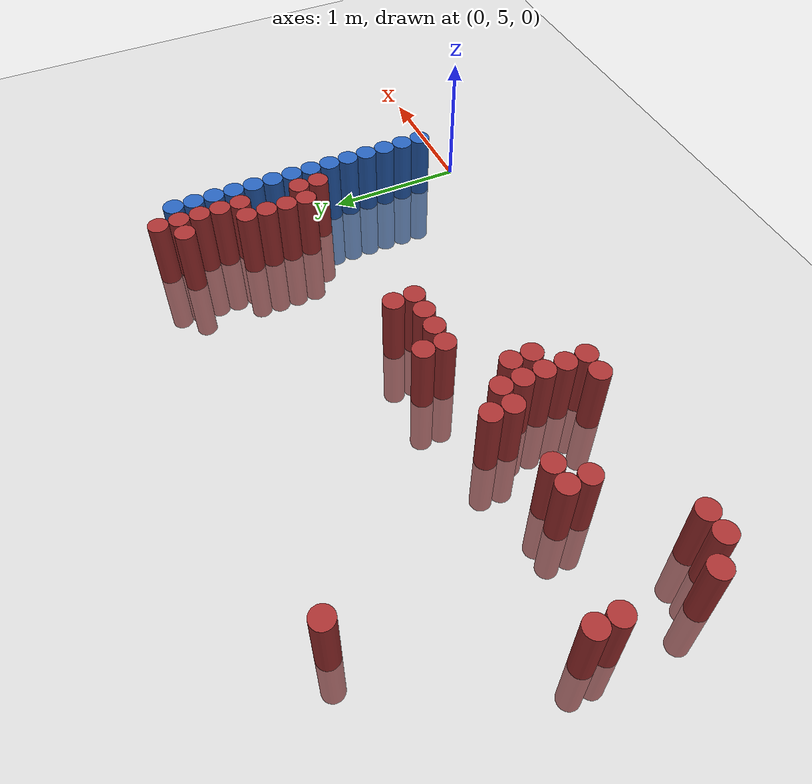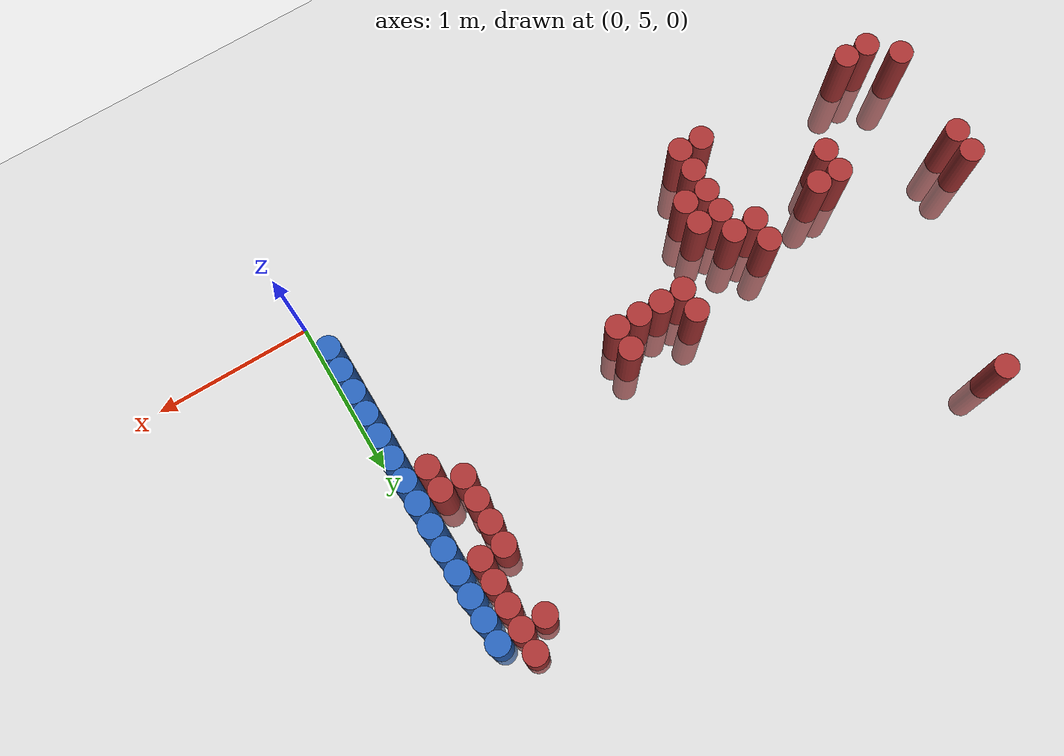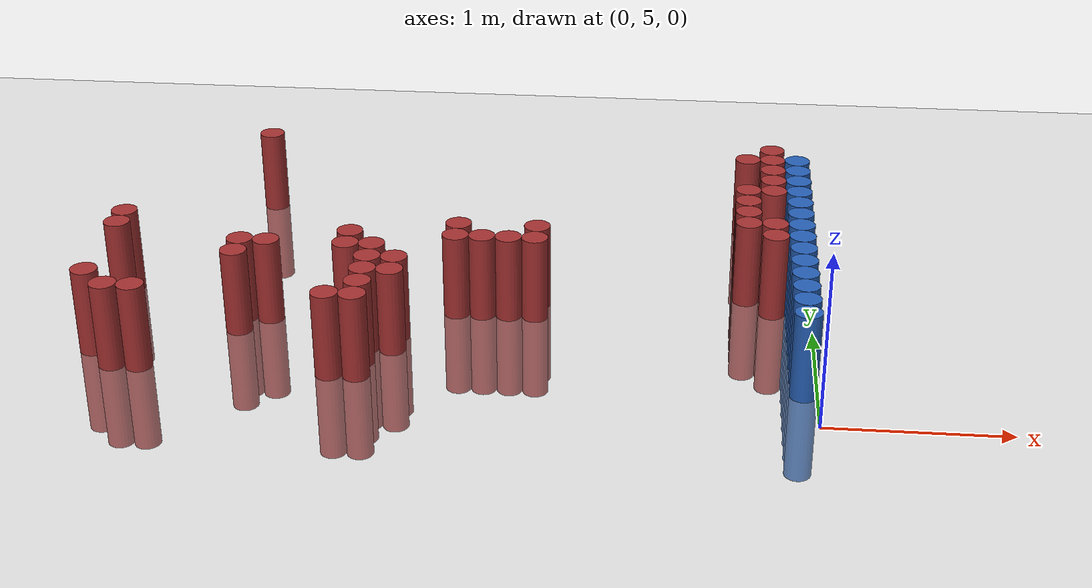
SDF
<sdf version="1.6">
 <world name="default">
  <model name="ground_plane">
   <static>1</static>
   <link name="link">
    <collision name="collision">
     <geometry><plane><normal>0 0 1</normal><size>100 100</size></plane></geometry>
     <surface><friction><ode><mu>100</mu><mu2>50</mu2></ode></friction></surface>
    </collision>
    <visual name="visual">
     <cast_shadows>0</cast_shadows>
     <geometry><plane><normal>0 0 1</normal><size>100 100</size></plane></geometry>
     <material>
      <script><uri>file://media/materials/scripts/gazebo.material</uri><name>Gazebo/Grey</name></script>
     </material>
    </visual>
   </link>
  </model>
  <model name="unit_cylinder_151">
   <static>1</static>
   <pose>-3.975000 5.475000 0.000000 0.000000 0.000000 0.000000</pose>
   <link name="link">
    <inertial>
     <mass>1</mass>
     <inertia><ixx>0.145833</ixx><ixy>0</ixy><ixz>0</ixz><iyy>0.145833</iyy><iyz>0</iyz><izz>0.125</izz></inertia>
    </inertial>
    <collision name="collision">
     <geometry><cylinder><radius>0.075000</radius><length>1</length></cylinder></geometry>
    </collision>
    <visual name="visual">
     <geometry><cylinder><radius>0.075000</radius><length>1</length></cylinder></geometry>
     <material>
      <ambient>0.648000 0.192000 0.192000 1</ambient>
      <diffuse>0.648000 0.192000 0.192000 1</diffuse>
     </material>
     <material>
      <script><name>Gazebo/Grey</name><uri>file://media/materials/scripts/gazebo.material</uri></script>
     </material>
    </visual>
   </link>
  </model>
  <model name="unit_cylinder_152">
   <static>1</static>
   <pose>-3.975000 6.075000 0.000000 0.000000 0.000000 0.000000</pose>
   <link name="link">
    <inertial>
     <mass>1</mass>
     <inertia><ixx>0.145833</ixx><ixy>0</ixy><ixz>0</ixz><iyy>0.145833</iyy><iyz>0</iyz><izz>0.125</izz></inertia>
    </inertial>
    <collision name="collision">
     <geometry><cylinder><radius>0.075000</radius><length>1</length></cylinder></geometry>
    </collision>
    <visual name="visual">
     <geometry><cylinder><radius>0.075000</radius><length>1</length></cylinder></geometry>
     <material>
      <ambient>0.648000 0.192000 0.192000 1</ambient>
      <diffuse>0.648000 0.192000 0.192000 1</diffuse>
     </material>
     <material>
      <script><name>Gazebo/Grey</name><uri>file://media/materials/scripts/gazebo.material</uri></script>
     </material>
    </visual>
   </link>
  </model>
  <model name="unit_cylinder_153">
   <static>1</static>
   <pose>-3.975000 6.225000 0.000000 0.000000 0.000000 0.000000</pose>
   <link name="link">
    <inertial>
     <mass>1</mass>
     <inertia><ixx>0.145833</ixx><ixy>0</ixy><ixz>0</ixz><iyy>0.145833</iyy><iyz>0</iyz><izz>0.125</izz></inertia>
    </inertial>
    <collision name="collision">
     <geometry><cylinder><radius>0.075000</radius><length>1</length></cylinder></geometry>
    </collision>
    <visual name="visual">
     <geometry><cylinder><radius>0.075000</radius><length>1</length></cylinder></geometry>
     <material>
      <ambient>0.648000 0.192000 0.192000 1</ambient>
      <diffuse>0.648000 0.192000 0.192000 1</diffuse>
     </material>
     <material>
      <script><name>Gazebo/Grey</name><uri>file://media/materials/scripts/gazebo.material</uri></script>
     </material>
    </visual>
   </link>
  </model>
  <model name="unit_cylinder_156">
   <static>1</static>
   <pose>-3.825000 5.325000 0.000000 0.000000 0.000000 0.000000</pose>
   <link name="link">
    <inertial>
     <mass>1</mass>
     <inertia><ixx>0.145833</ixx><ixy>0</ixy><ixz>0</ixz><iyy>0.145833</iyy><iyz>0</iyz><izz>0.125</izz></inertia>
    </inertial>
    <collision name="collision">
     <geometry><cylinder><radius>0.075000</radius><length>1</length></cylinder></geometry>
    </collision>
    <visual name="visual">
     <geometry><cylinder><radius>0.075000</radius><length>1</length></cylinder></geometry>
     <material>
      <ambient>0.648000 0.192000 0.192000 1</ambient>
      <diffuse>0.648000 0.192000 0.192000 1</diffuse>
     </material>
     <material>
      <script><name>Gazebo/Grey</name><uri>file://media/materials/scripts/gazebo.material</uri></script>
     </material>
    </visual>
   </link>
  </model>
  <model name="unit_cylinder_158">
   <static>1</static>
   <pose>-3.675000 5.325000 0.000000 0.000000 0.000000 0.000000</pose>
   <link name="link">
    <inertial>
     <mass>1</mass>
     <inertia><ixx>0.145833</ixx><ixy>0</ixy><ixz>0</ixz><iyy>0.145833</iyy><iyz>0</iyz><izz>0.125</izz></inertia>
    </inertial>
    <collision name="collision">
     <geometry><cylinder><radius>0.075000</radius><length>1</length></cylinder></geometry>
    </collision>
    <visual name="visual">
     <geometry><cylinder><radius>0.075000</radius><length>1</length></cylinder></geometry>
     <material>
      <ambient>0.648000 0.192000 0.192000 1</ambient>
      <diffuse>0.648000 0.192000 0.192000 1</diffuse>
     </material>
     <material>
      <script><name>Gazebo/Grey</name><uri>file://media/materials/scripts/gazebo.material</uri></script>
     </material>
    </visual>
   </link>
  </model>
  <model name="unit_cylinder_159">
   <static>1</static>
   <pose>-3.375000 7.425000 0.000000 0.000000 0.000000 0.000000</pose>
   <link name="link">
    <inertial>
     <mass>1</mass>
     <inertia><ixx>0.145833</ixx><ixy>0</ixy><ixz>0</ixz><iyy>0.145833</iyy><iyz>0</iyz><izz>0.125</izz></inertia>
    </inertial>
    <collision name="collision">
     <geometry><cylinder><radius>0.075000</radius><length>1</length></cylinder></geometry>
    </collision>
    <visual name="visual">
     <geometry><cylinder><radius>0.075000</radius><length>1</length></cylinder></geometry>
     <material>
      <ambient>0.648000 0.192000 0.192000 1</ambient>
      <diffuse>0.648000 0.192000 0.192000 1</diffuse>
     </material>
     <material>
      <script><name>Gazebo/Grey</name><uri>file://media/materials/scripts/gazebo.material</uri></script>
     </material>
    </visual>
   </link>
  </model>
  <model name="unit_cylinder_160">
   <static>1</static>
   <pose>-3.225000 5.775000 0.000000 0.000000 0.000000 0.000000</pose>
   <link name="link">
    <inertial>
     <mass>1</mass>
     <inertia><ixx>0.145833</ixx><ixy>0</ixy><ixz>0</ixz><iyy>0.145833</iyy><iyz>0</iyz><izz>0.125</izz></inertia>
    </inertial>
    <collision name="collision">
     <geometry><cylinder><radius>0.075000</radius><length>1</length></cylinder></geometry>
    </collision>
    <visual name="visual">
     <geometry><cylinder><radius>0.075000</radius><length>1</length></cylinder></geometry>
     <material>
      <ambient>0.648000 0.192000 0.192000 1</ambient>
      <diffuse>0.648000 0.192000 0.192000 1</diffuse>
     </material>
     <material>
      <script><name>Gazebo/Grey</name><uri>file://media/materials/scripts/gazebo.material</uri></script>
     </material>
    </visual>
   </link>
  </model>
  <model name="unit_cylinder_161">
   <static>1</static>
   <pose>-3.225000 5.925000 0.000000 0.000000 0.000000 0.000000</pose>
   <link name="link">
    <inertial>
     <mass>1</mass>
     <inertia><ixx>0.145833</ixx><ixy>0</ixy><ixz>0</ixz><iyy>0.145833</iyy><iyz>0</iyz><izz>0.125</izz></inertia>
    </inertial>
    <collision name="collision">
     <geometry><cylinder><radius>0.075000</radius><length>1</length></cylinder></geometry>
    </collision>
    <visual name="visual">
     <geometry><cylinder><radius>0.075000</radius><length>1</length></cylinder></geometry>
     <material>
      <ambient>0.648000 0.192000 0.192000 1</ambient>
      <diffuse>0.648000 0.192000 0.192000 1</diffuse>
     </material>
     <material>
      <script><name>Gazebo/Grey</name><uri>file://media/materials/scripts/gazebo.material</uri></script>
     </material>
    </visual>
   </link>
  </model>
  <model name="unit_cylinder_162">
   <static>1</static>
   <pose>-3.075000 5.925000 0.000000 0.000000 0.000000 0.000000</pose>
   <link name="link">
    <inertial>
     <mass>1</mass>
     <inertia><ixx>0.145833</ixx><ixy>0</ixy><ixz>0</ixz><iyy>0.145833</iyy><iyz>0</iyz><izz>0.125</izz></inertia>
    </inertial>
    <collision name="collision">
     <geometry><cylinder><radius>0.075000</radius><length>1</length></cylinder></geometry>
    </collision>
    <visual name="visual">
     <geometry><cylinder><radius>0.075000</radius><length>1</length></cylinder></geometry>
     <material>
      <ambient>0.648000 0.192000 0.192000 1</ambient>
      <diffuse>0.648000 0.192000 0.192000 1</diffuse>
     </material>
     <material>
      <script><name>Gazebo/Grey</name><uri>file://media/materials/scripts/gazebo.material</uri></script>
     </material>
    </visual>
   </link>
  </model>
  <model name="unit_cylinder_169">
   <static>1</static>
   <pose>-2.625000 5.325000 0.000000 0.000000 0.000000 0.000000</pose>
   <link name="link">
    <inertial>
     <mass>1</mass>
     <inertia><ixx>0.145833</ixx><ixy>0</ixy><ixz>0</ixz><iyy>0.145833</iyy><iyz>0</iyz><izz>0.125</izz></inertia>
    </inertial>
    <collision name="collision">
     <geometry><cylinder><radius>0.075000</radius><length>1</length></cylinder></geometry>
    </collision>
    <visual name="visual">
     <geometry><cylinder><radius>0.075000</radius><length>1</length></cylinder></geometry>
     <material>
      <ambient>0.648000 0.192000 0.192000 1</ambient>
      <diffuse>0.648000 0.192000 0.192000 1</diffuse>
     </material>
     <material>
      <script><name>Gazebo/Grey</name><uri>file://media/materials/scripts/gazebo.material</uri></script>
     </material>
    </visual>
   </link>
  </model>
  <model name="unit_cylinder_170">
   <static>1</static>
   <pose>-2.625000 5.925000 0.000000 0.000000 0.000000 0.000000</pose>
   <link name="link">
    <inertial>
     <mass>1</mass>
     <inertia><ixx>0.145833</ixx><ixy>0</ixy><ixz>0</ixz><iyy>0.145833</iyy><iyz>0</iyz><izz>0.125</izz></inertia>
    </inertial>
    <collision name="collision">
     <geometry><cylinder><radius>0.075000</radius><length>1</length></cylinder></geometry>
    </collision>
    <visual name="visual">
     <geometry><cylinder><radius>0.075000</radius><length>1</length></cylinder></geometry>
     <material>
      <ambient>0.648000 0.192000 0.192000 1</ambient>
      <diffuse>0.648000 0.192000 0.192000 1</diffuse>
     </material>
     <material>
      <script><name>Gazebo/Grey</name><uri>file://media/materials/scripts/gazebo.material</uri></script>
     </material>
    </visual>
   </link>
  </model>
  <model name="unit_cylinder_171">
   <static>1</static>
   <pose>-2.625000 6.075000 0.000000 0.000000 0.000000 0.000000</pose>
   <link name="link">
    <inertial>
     <mass>1</mass>
     <inertia><ixx>0.145833</ixx><ixy>0</ixy><ixz>0</ixz><iyy>0.145833</iyy><iyz>0</iyz><izz>0.125</izz></inertia>
    </inertial>
    <collision name="collision">
     <geometry><cylinder><radius>0.075000</radius><length>1</length></cylinder></geometry>
    </collision>
    <visual name="visual">
     <geometry><cylinder><radius>0.075000</radius><length>1</length></cylinder></geometry>
     <material>
      <ambient>0.648000 0.192000 0.192000 1</ambient>
      <diffuse>0.648000 0.192000 0.192000 1</diffuse>
     </material>
     <material>
      <script><name>Gazebo/Grey</name><uri>file://media/materials/scripts/gazebo.material</uri></script>
     </material>
    </visual>
   </link>
  </model>
  <model name="unit_cylinder_175">
   <static>1</static>
   <pose>-2.475000 5.325000 0.000000 0.000000 0.000000 0.000000</pose>
   <link name="link">
    <inertial>
     <mass>1</mass>
     <inertia><ixx>0.145833</ixx><ixy>0</ixy><ixz>0</ixz><iyy>0.145833</iyy><iyz>0</iyz><izz>0.125</izz></inertia>
    </inertial>
    <collision name="collision">
     <geometry><cylinder><radius>0.075000</radius><length>1</length></cylinder></geometry>
    </collision>
    <visual name="visual">
     <geometry><cylinder><radius>0.075000</radius><length>1</length></cylinder></geometry>
     <material>
      <ambient>0.648000 0.192000 0.192000 1</ambient>
      <diffuse>0.648000 0.192000 0.192000 1</diffuse>
     </material>
     <material>
      <script><name>Gazebo/Grey</name><uri>file://media/materials/scripts/gazebo.material</uri></script>
     </material>
    </visual>
   </link>
  </model>
  <model name="unit_cylinder_176">
   <static>1</static>
   <pose>-2.475000 5.475000 0.000000 0.000000 0.000000 0.000000</pose>
   <link name="link">
    <inertial>
     <mass>1</mass>
     <inertia><ixx>0.145833</ixx><ixy>0</ixy><ixz>0</ixz><iyy>0.145833</iyy><iyz>0</iyz><izz>0.125</izz></inertia>
    </inertial>
    <collision name="collision">
     <geometry><cylinder><radius>0.075000</radius><length>1</length></cylinder></geometry>
    </collision>
    <visual name="visual">
     <geometry><cylinder><radius>0.075000</radius><length>1</length></cylinder></geometry>
     <material>
      <ambient>0.648000 0.192000 0.192000 1</ambient>
      <diffuse>0.648000 0.192000 0.192000 1</diffuse>
     </material>
     <material>
      <script><name>Gazebo/Grey</name><uri>file://media/materials/scripts/gazebo.material</uri></script>
     </material>
    </visual>
   </link>
  </model>
  <model name="unit_cylinder_177">
   <static>1</static>
   <pose>-2.475000 5.625000 0.000000 0.000000 0.000000 0.000000</pose>
   <link name="link">
    <inertial>
     <mass>1</mass>
     <inertia><ixx>0.145833</ixx><ixy>0</ixy><ixz>0</ixz><iyy>0.145833</iyy><iyz>0</iyz><izz>0.125</izz></inertia>
    </inertial>
    <collision name="collision">
     <geometry><cylinder><radius>0.075000</radius><length>1</length></cylinder></geometry>
    </collision>
    <visual name="visual">
     <geometry><cylinder><radius>0.075000</radius><length>1</length></cylinder></geometry>
     <material>
      <ambient>0.648000 0.192000 0.192000 1</ambient>
      <diffuse>0.648000 0.192000 0.192000 1</diffuse>
     </material>
     <material>
      <script><name>Gazebo/Grey</name><uri>file://media/materials/scripts/gazebo.material</uri></script>
     </material>
    </visual>
   </link>
  </model>
  <model name="unit_cylinder_178">
   <static>1</static>
   <pose>-2.475000 5.775000 0.000000 0.000000 0.000000 0.000000</pose>
   <link name="link">
    <inertial>
     <mass>1</mass>
     <inertia><ixx>0.145833</ixx><ixy>0</ixy><ixz>0</ixz><iyy>0.145833</iyy><iyz>0</iyz><izz>0.125</izz></inertia>
    </inertial>
    <collision name="collision">
     <geometry><cylinder><radius>0.075000</radius><length>1</length></cylinder></geometry>
    </collision>
    <visual name="visual">
     <geometry><cylinder><radius>0.075000</radius><length>1</length></cylinder></geometry>
     <material>
      <ambient>0.648000 0.192000 0.192000 1</ambient>
      <diffuse>0.648000 0.192000 0.192000 1</diffuse>
     </material>
     <material>
      <script><name>Gazebo/Grey</name><uri>file://media/materials/scripts/gazebo.material</uri></script>
     </material>
    </visual>
   </link>
  </model>
  <model name="unit_cylinder_179">
   <static>1</static>
   <pose>-2.475000 5.925000 0.000000 0.000000 0.000000 0.000000</pose>
   <link name="link">
    <inertial>
     <mass>1</mass>
     <inertia><ixx>0.145833</ixx><ixy>0</ixy><ixz>0</ixz><iyy>0.145833</iyy><iyz>0</iyz><izz>0.125</izz></inertia>
    </inertial>
    <collision name="collision">
     <geometry><cylinder><radius>0.075000</radius><length>1</length></cylinder></geometry>
    </collision>
    <visual name="visual">
     <geometry><cylinder><radius>0.075000</radius><length>1</length></cylinder></geometry>
     <material>
      <ambient>0.648000 0.192000 0.192000 1</ambient>
      <diffuse>0.648000 0.192000 0.192000 1</diffuse>
     </material>
     <material>
      <script><name>Gazebo/Grey</name><uri>file://media/materials/scripts/gazebo.material</uri></script>
     </material>
    </visual>
   </link>
  </model>
  <model name="unit_cylinder_182">
   <static>1</static>
   <pose>-2.325000 5.625000 0.000000 0.000000 0.000000 0.000000</pose>
   <link name="link">
    <inertial>
     <mass>1</mass>
     <inertia><ixx>0.145833</ixx><ixy>0</ixy><ixz>0</ixz><iyy>0.145833</iyy><iyz>0</iyz><izz>0.125</izz></inertia>
    </inertial>
    <collision name="collision">
     <geometry><cylinder><radius>0.075000</radius><length>1</length></cylinder></geometry>
    </collision>
    <visual name="visual">
     <geometry><cylinder><radius>0.075000</radius><length>1</length></cylinder></geometry>
     <material>
      <ambient>0.648000 0.192000 0.192000 1</ambient>
      <diffuse>0.648000 0.192000 0.192000 1</diffuse>
     </material>
     <material>
      <script><name>Gazebo/Grey</name><uri>file://media/materials/scripts/gazebo.material</uri></script>
     </material>
    </visual>
   </link>
  </model>
  <model name="unit_cylinder_183">
   <static>1</static>
   <pose>-2.325000 5.775000 0.000000 0.000000 0.000000 0.000000</pose>
   <link name="link">
    <inertial>
     <mass>1</mass>
     <inertia><ixx>0.145833</ixx><ixy>0</ixy><ixz>0</ixz><iyy>0.145833</iyy><iyz>0</iyz><izz>0.125</izz></inertia>
    </inertial>
    <collision name="collision">
     <geometry><cylinder><radius>0.075000</radius><length>1</length></cylinder></geometry>
    </collision>
    <visual name="visual">
     <geometry><cylinder><radius>0.075000</radius><length>1</length></cylinder></geometry>
     <material>
      <ambient>0.648000 0.192000 0.192000 1</ambient>
      <diffuse>0.648000 0.192000 0.192000 1</diffuse>
     </material>
     <material>
      <script><name>Gazebo/Grey</name><uri>file://media/materials/scripts/gazebo.material</uri></script>
     </material>
    </visual>
   </link>
  </model>
  <model name="unit_cylinder_187">
   <static>1</static>
   <pose>-2.025000 6.075000 0.000000 0.000000 0.000000 0.000000</pose>
   <link name="link">
    <inertial>
     <mass>1</mass>
     <inertia><ixx>0.145833</ixx><ixy>0</ixy><ixz>0</ixz><iyy>0.145833</iyy><iyz>0</iyz><izz>0.125</izz></inertia>
    </inertial>
    <collision name="collision">
     <geometry><cylinder><radius>0.075000</radius><length>1</length></cylinder></geometry>
    </collision>
    <visual name="visual">
     <geometry><cylinder><radius>0.075000</radius><length>1</length></cylinder></geometry>
     <material>
      <ambient>0.648000 0.192000 0.192000 1</ambient>
      <diffuse>0.648000 0.192000 0.192000 1</diffuse>
     </material>
     <material>
      <script><name>Gazebo/Grey</name><uri>file://media/materials/scripts/gazebo.material</uri></script>
     </material>
    </visual>
   </link>
  </model>
  <model name="unit_cylinder_188">
   <static>1</static>
   <pose>-2.025000 6.225000 0.000000 0.000000 0.000000 0.000000</pose>
   <link name="link">
    <inertial>
     <mass>1</mass>
     <inertia><ixx>0.145833</ixx><ixy>0</ixy><ixz>0</ixz><iyy>0.145833</iyy><iyz>0</iyz><izz>0.125</izz></inertia>
    </inertial>
    <collision name="collision">
     <geometry><cylinder><radius>0.075000</radius><length>1</length></cylinder></geometry>
    </collision>
    <visual name="visual">
     <geometry><cylinder><radius>0.075000</radius><length>1</length></cylinder></geometry>
     <material>
      <ambient>0.648000 0.192000 0.192000 1</ambient>
      <diffuse>0.648000 0.192000 0.192000 1</diffuse>
     </material>
     <material>
      <script><name>Gazebo/Grey</name><uri>file://media/materials/scripts/gazebo.material</uri></script>
     </material>
    </visual>
   </link>
  </model>
  <model name="unit_cylinder_192">
   <static>1</static>
   <pose>-1.875000 6.075000 0.000000 0.000000 0.000000 0.000000</pose>
   <link name="link">
    <inertial>
     <mass>1</mass>
     <inertia><ixx>0.145833</ixx><ixy>0</ixy><ixz>0</ixz><iyy>0.145833</iyy><iyz>0</iyz><izz>0.125</izz></inertia>
    </inertial>
    <collision name="collision">
     <geometry><cylinder><radius>0.075000</radius><length>1</length></cylinder></geometry>
    </collision>
    <visual name="visual">
     <geometry><cylinder><radius>0.075000</radius><length>1</length></cylinder></geometry>
     <material>
      <ambient>0.648000 0.192000 0.192000 1</ambient>
      <diffuse>0.648000 0.192000 0.192000 1</diffuse>
     </material>
     <material>
      <script><name>Gazebo/Grey</name><uri>file://media/materials/scripts/gazebo.material</uri></script>
     </material>
    </visual>
   </link>
  </model>
  <model name="unit_cylinder_196">
   <static>1</static>
   <pose>-1.725000 6.075000 0.000000 0.000000 0.000000 0.000000</pose>
   <link name="link">
    <inertial>
     <mass>1</mass>
     <inertia><ixx>0.145833</ixx><ixy>0</ixy><ixz>0</ixz><iyy>0.145833</iyy><iyz>0</iyz><izz>0.125</izz></inertia>
    </inertial>
    <collision name="collision">
     <geometry><cylinder><radius>0.075000</radius><length>1</length></cylinder></geometry>
    </collision>
    <visual name="visual">
     <geometry><cylinder><radius>0.075000</radius><length>1</length></cylinder></geometry>
     <material>
      <ambient>0.648000 0.192000 0.192000 1</ambient>
      <diffuse>0.648000 0.192000 0.192000 1</diffuse>
     </material>
     <material>
      <script><name>Gazebo/Grey</name><uri>file://media/materials/scripts/gazebo.material</uri></script>
     </material>
    </visual>
   </link>
  </model>
  <model name="unit_cylinder_198">
   <static>1</static>
   <pose>-1.575000 6.075000 0.000000 0.000000 0.000000 0.000000</pose>
   <link name="link">
    <inertial>
     <mass>1</mass>
     <inertia><ixx>0.145833</ixx><ixy>0</ixy><ixz>0</ixz><iyy>0.145833</iyy><iyz>0</iyz><izz>0.125</izz></inertia>
    </inertial>
    <collision name="collision">
     <geometry><cylinder><radius>0.075000</radius><length>1</length></cylinder></geometry>
    </collision>
    <visual name="visual">
     <geometry><cylinder><radius>0.075000</radius><length>1</length></cylinder></geometry>
     <material>
      <ambient>0.648000 0.192000 0.192000 1</ambient>
      <diffuse>0.648000 0.192000 0.192000 1</diffuse>
     </material>
     <material>
      <script><name>Gazebo/Grey</name><uri>file://media/materials/scripts/gazebo.material</uri></script>
     </material>
    </visual>
   </link>
  </model>
  <model name="unit_cylinder_199">
   <static>1</static>
   <pose>-1.575000 6.225000 0.000000 0.000000 0.000000 0.000000</pose>
   <link name="link">
    <inertial>
     <mass>1</mass>
     <inertia><ixx>0.145833</ixx><ixy>0</ixy><ixz>0</ixz><iyy>0.145833</iyy><iyz>0</iyz><izz>0.125</izz></inertia>
    </inertial>
    <collision name="collision">
     <geometry><cylinder><radius>0.075000</radius><length>1</length></cylinder></geometry>
    </collision>
    <visual name="visual">
     <geometry><cylinder><radius>0.075000</radius><length>1</length></cylinder></geometry>
     <material>
      <ambient>0.648000 0.192000 0.192000 1</ambient>
      <diffuse>0.648000 0.192000 0.192000 1</diffuse>
     </material>
     <material>
      <script><name>Gazebo/Grey</name><uri>file://media/materials/scripts/gazebo.material</uri></script>
     </material>
    </visual>
   </link>
  </model>
  <model name="unit_cylinder_209">
   <static>1</static>
   <pose>-0.375000 6.375000 0.000000 0.000000 0.000000 0.000000</pose>
   <link name="link">
    <inertial>
     <mass>1</mass>
     <inertia><ixx>0.145833</ixx><ixy>0</ixy><ixz>0</ixz><iyy>0.145833</iyy><iyz>0</iyz><izz>0.125</izz></inertia>
    </inertial>
    <collision name="collision">
     <geometry><cylinder><radius>0.075000</radius><length>1</length></cylinder></geometry>
    </collision>
    <visual name="visual">
     <geometry><cylinder><radius>0.075000</radius><length>1</length></cylinder></geometry>
     <material>
      <ambient>0.648000 0.192000 0.192000 1</ambient>
      <diffuse>0.648000 0.192000 0.192000 1</diffuse>
     </material>
     <material>
      <script><name>Gazebo/Grey</name><uri>file://media/materials/scripts/gazebo.material</uri></script>
     </material>
    </visual>
   </link>
  </model>
  <model name="unit_cylinder_210">
   <static>1</static>
   <pose>-0.375000 6.525000 0.000000 0.000000 0.000000 0.000000</pose>
   <link name="link">
    <inertial>
     <mass>1</mass>
     <inertia><ixx>0.145833</ixx><ixy>0</ixy><ixz>0</ixz><iyy>0.145833</iyy><iyz>0</iyz><izz>0.125</izz></inertia>
    </inertial>
    <collision name="collision">
     <geometry><cylinder><radius>0.075000</radius><length>1</length></cylinder></geometry>
    </collision>
    <visual name="visual">
     <geometry><cylinder><radius>0.075000</radius><length>1</length></cylinder></geometry>
     <material>
      <ambient>0.648000 0.192000 0.192000 1</ambient>
      <diffuse>0.648000 0.192000 0.192000 1</diffuse>
     </material>
     <material>
      <script><name>Gazebo/Grey</name><uri>file://media/materials/scripts/gazebo.material</uri></script>
     </material>
    </visual>
   </link>
  </model>
  <model name="unit_cylinder_211">
   <static>1</static>
   <pose>-0.375000 6.675000 0.000000 0.000000 0.000000 0.000000</pose>
   <link name="link">
    <inertial>
     <mass>1</mass>
     <inertia><ixx>0.145833</ixx><ixy>0</ixy><ixz>0</ixz><iyy>0.145833</iyy><iyz>0</iyz><izz>0.125</izz></inertia>
    </inertial>
    <collision name="collision">
     <geometry><cylinder><radius>0.075000</radius><length>1</length></cylinder></geometry>
    </collision>
    <visual name="visual">
     <geometry><cylinder><radius>0.075000</radius><length>1</length></cylinder></geometry>
     <material>
      <ambient>0.648000 0.192000 0.192000 1</ambient>
      <diffuse>0.648000 0.192000 0.192000 1</diffuse>
     </material>
     <material>
      <script><name>Gazebo/Grey</name><uri>file://media/materials/scripts/gazebo.material</uri></script>
     </material>
    </visual>
   </link>
  </model>
  <model name="unit_cylinder_212">
   <static>1</static>
   <pose>-0.375000 6.825000 0.000000 0.000000 0.000000 0.000000</pose>
   <link name="link">
    <inertial>
     <mass>1</mass>
     <inertia><ixx>0.145833</ixx><ixy>0</ixy><ixz>0</ixz><iyy>0.145833</iyy><iyz>0</iyz><izz>0.125</izz></inertia>
    </inertial>
    <collision name="collision">
     <geometry><cylinder><radius>0.075000</radius><length>1</length></cylinder></geometry>
    </collision>
    <visual name="visual">
     <geometry><cylinder><radius>0.075000</radius><length>1</length></cylinder></geometry>
     <material>
      <ambient>0.648000 0.192000 0.192000 1</ambient>
      <diffuse>0.648000 0.192000 0.192000 1</diffuse>
     </material>
     <material>
      <script><name>Gazebo/Grey</name><uri>file://media/materials/scripts/gazebo.material</uri></script>
     </material>
    </visual>
   </link>
  </model>
  <model name="unit_cylinder_213">
   <static>1</static>
   <pose>-0.375000 7.275000 0.000000 0.000000 0.000000 0.000000</pose>
   <link name="link">
    <inertial>
     <mass>1</mass>
     <inertia><ixx>0.145833</ixx><ixy>0</ixy><ixz>0</ixz><iyy>0.145833</iyy><iyz>0</iyz><izz>0.125</izz></inertia>
    </inertial>
    <collision name="collision">
     <geometry><cylinder><radius>0.075000</radius><length>1</length></cylinder></geometry>
    </collision>
    <visual name="visual">
     <geometry><cylinder><radius>0.075000</radius><length>1</length></cylinder></geometry>
     <material>
      <ambient>0.648000 0.192000 0.192000 1</ambient>
      <diffuse>0.648000 0.192000 0.192000 1</diffuse>
     </material>
     <material>
      <script><name>Gazebo/Grey</name><uri>file://media/materials/scripts/gazebo.material</uri></script>
     </material>
    </visual>
   </link>
  </model>
  <model name="unit_cylinder_215">
   <static>1</static>
   <pose>-0.225000 6.225000 0.000000 0.000000 0.000000 0.000000</pose>
   <link name="link">
    <inertial>
     <mass>1</mass>
     <inertia><ixx>0.145833</ixx><ixy>0</ixy><ixz>0</ixz><iyy>0.145833</iyy><iyz>0</iyz><izz>0.125</izz></inertia>
    </inertial>
    <collision name="collision">
     <geometry><cylinder><radius>0.075000</radius><length>1</length></cylinder></geometry>
    </collision>
    <visual name="visual">
     <geometry><cylinder><radius>0.075000</radius><length>1</length></cylinder></geometry>
     <material>
      <ambient>0.648000 0.192000 0.192000 1</ambient>
      <diffuse>0.648000 0.192000 0.192000 1</diffuse>
     </material>
     <material>
      <script><name>Gazebo/Grey</name><uri>file://media/materials/scripts/gazebo.material</uri></script>
     </material>
    </visual>
   </link>
  </model>
  <model name="unit_cylinder_216">
   <static>1</static>
   <pose>-0.225000 6.375000 0.000000 0.000000 0.000000 0.000000</pose>
   <link name="link">
    <inertial>
     <mass>1</mass>
     <inertia><ixx>0.145833</ixx><ixy>0</ixy><ixz>0</ixz><iyy>0.145833</iyy><iyz>0</iyz><izz>0.125</izz></inertia>
    </inertial>
    <collision name="collision">
     <geometry><cylinder><radius>0.075000</radius><length>1</length></cylinder></geometry>
    </collision>
    <visual name="visual">
     <geometry><cylinder><radius>0.075000</radius><length>1</length></cylinder></geometry>
     <material>
      <ambient>0.648000 0.192000 0.192000 1</ambient>
      <diffuse>0.648000 0.192000 0.192000 1</diffuse>
     </material>
     <material>
      <script><name>Gazebo/Grey</name><uri>file://media/materials/scripts/gazebo.material</uri></script>
     </material>
    </visual>
   </link>
  </model>
  <model name="unit_cylinder_217">
   <static>1</static>
   <pose>-0.225000 6.825000 0.000000 0.000000 0.000000 0.000000</pose>
   <link name="link">
    <inertial>
     <mass>1</mass>
     <inertia><ixx>0.145833</ixx><ixy>0</ixy><ixz>0</ixz><iyy>0.145833</iyy><iyz>0</iyz><izz>0.125</izz></inertia>
    </inertial>
    <collision name="collision">
     <geometry><cylinder><radius>0.075000</radius><length>1</length></cylinder></geometry>
    </collision>
    <visual name="visual">
     <geometry><cylinder><radius>0.075000</radius><length>1</length></cylinder></geometry>
     <material>
      <ambient>0.648000 0.192000 0.192000 1</ambient>
      <diffuse>0.648000 0.192000 0.192000 1</diffuse>
     </material>
     <material>
      <script><name>Gazebo/Grey</name><uri>file://media/materials/scripts/gazebo.material</uri></script>
     </material>
    </visual>
   </link>
  </model>
  <model name="unit_cylinder_218">
   <static>1</static>
   <pose>-0.225000 6.975000 0.000000 0.000000 0.000000 0.000000</pose>
   <link name="link">
    <inertial>
     <mass>1</mass>
     <inertia><ixx>0.145833</ixx><ixy>0</ixy><ixz>0</ixz><iyy>0.145833</iyy><iyz>0</iyz><izz>0.125</izz></inertia>
    </inertial>
    <collision name="collision">
     <geometry><cylinder><radius>0.075000</radius><length>1</length></cylinder></geometry>
    </collision>
    <visual name="visual">
     <geometry><cylinder><radius>0.075000</radius><length>1</length></cylinder></geometry>
     <material>
      <ambient>0.648000 0.192000 0.192000 1</ambient>
      <diffuse>0.648000 0.192000 0.192000 1</diffuse>
     </material>
     <material>
      <script><name>Gazebo/Grey</name><uri>file://media/materials/scripts/gazebo.material</uri></script>
     </material>
    </visual>
   </link>
  </model>
  <model name="unit_cylinder_219">
   <static>1</static>
   <pose>-0.225000 7.125000 0.000000 0.000000 0.000000 0.000000</pose>
   <link name="link">
    <inertial>
     <mass>1</mass>
     <inertia><ixx>0.145833</ixx><ixy>0</ixy><ixz>0</ixz><iyy>0.145833</iyy><iyz>0</iyz><izz>0.125</izz></inertia>
    </inertial>
    <collision name="collision">
     <geometry><cylinder><radius>0.075000</radius><length>1</length></cylinder></geometry>
    </collision>
    <visual name="visual">
     <geometry><cylinder><radius>0.075000</radius><length>1</length></cylinder></geometry>
     <material>
      <ambient>0.648000 0.192000 0.192000 1</ambient>
      <diffuse>0.648000 0.192000 0.192000 1</diffuse>
     </material>
     <material>
      <script><name>Gazebo/Grey</name><uri>file://media/materials/scripts/gazebo.material</uri></script>
     </material>
    </visual>
   </link>
  </model>
  <model name="unit_cylinder_220">
   <static>1</static>
   <pose>-0.225000 7.275000 0.000000 0.000000 0.000000 0.000000</pose>
   <link name="link">
    <inertial>
     <mass>1</mass>
     <inertia><ixx>0.145833</ixx><ixy>0</ixy><ixz>0</ixz><iyy>0.145833</iyy><iyz>0</iyz><izz>0.125</izz></inertia>
    </inertial>
    <collision name="collision">
     <geometry><cylinder><radius>0.075000</radius><length>1</length></cylinder></geometry>
    </collision>
    <visual name="visual">
     <geometry><cylinder><radius>0.075000</radius><length>1</length></cylinder></geometry>
     <material>
      <ambient>0.648000 0.192000 0.192000 1</ambient>
      <diffuse>0.648000 0.192000 0.192000 1</diffuse>
     </material>
     <material>
      <script><name>Gazebo/Grey</name><uri>file://media/materials/scripts/gazebo.material</uri></script>
     </material>
    </visual>
   </link>
  </model>
  <model name="unit_cylinder_221">
   <static>1</static>
   <pose>-0.225000 7.425000 0.000000 0.000000 0.000000 0.000000</pose>
   <link name="link">
    <inertial>
     <mass>1</mass>
     <inertia><ixx>0.145833</ixx><ixy>0</ixy><ixz>0</ixz><iyy>0.145833</iyy><iyz>0</iyz><izz>0.125</izz></inertia>
    </inertial>
    <collision name="collision">
     <geometry><cylinder><radius>0.075000</radius><length>1</length></cylinder></geometry>
    </collision>
    <visual name="visual">
     <geometry><cylinder><radius>0.075000</radius><length>1</length></cylinder></geometry>
     <material>
      <ambient>0.648000 0.192000 0.192000 1</ambient>
      <diffuse>0.648000 0.192000 0.192000 1</diffuse>
     </material>
     <material>
      <script><name>Gazebo/Grey</name><uri>file://media/materials/scripts/gazebo.material</uri></script>
     </material>
    </visual>
   </link>
  </model>
  <model name="unit_cylinder_228">
   <static>1</static>
   <pose>-0.075000 5.325000 0.000000 0.000000 0.000000 0.000000</pose>
   <link name="link">
    <inertial>
     <mass>1</mass>
     <inertia><ixx>0.145833</ixx><ixy>0</ixy><ixz>0</ixz><iyy>0.145833</iyy><iyz>0</iyz><izz>0.125</izz></inertia>
    </inertial>
    <collision name="collision">
     <geometry><cylinder><radius>0.075000</radius><length>1</length></cylinder></geometry>
    </collision>
    <visual name="visual">
     <geometry><cylinder><radius>0.075000</radius><length>1</length></cylinder></geometry>
     <material>
      <ambient>0.152000 0.379000 0.720000 1</ambient>
      <diffuse>0.152000 0.379000 0.720000 1</diffuse>
     </material>
     <material>
      <script><name>Gazebo/Grey</name><uri>file://media/materials/scripts/gazebo.material</uri></script>
     </material>
    </visual>
   </link>
  </model>
  <model name="unit_cylinder_229">
   <static>1</static>
   <pose>-0.075000 5.475000 0.000000 0.000000 0.000000 0.000000</pose>
   <link name="link">
    <inertial>
     <mass>1</mass>
     <inertia><ixx>0.145833</ixx><ixy>0</ixy><ixz>0</ixz><iyy>0.145833</iyy><iyz>0</iyz><izz>0.125</izz></inertia>
    </inertial>
    <collision name="collision">
     <geometry><cylinder><radius>0.075000</radius><length>1</length></cylinder></geometry>
    </collision>
    <visual name="visual">
     <geometry><cylinder><radius>0.075000</radius><length>1</length></cylinder></geometry>
     <material>
      <ambient>0.152000 0.379000 0.720000 1</ambient>
      <diffuse>0.152000 0.379000 0.720000 1</diffuse>
     </material>
     <material>
      <script><name>Gazebo/Grey</name><uri>file://media/materials/scripts/gazebo.material</uri></script>
     </material>
    </visual>
   </link>
  </model>
  <model name="unit_cylinder_230">
   <static>1</static>
   <pose>-0.075000 5.625000 0.000000 0.000000 0.000000 0.000000</pose>
   <link name="link">
    <inertial>
     <mass>1</mass>
     <inertia><ixx>0.145833</ixx><ixy>0</ixy><ixz>0</ixz><iyy>0.145833</iyy><iyz>0</iyz><izz>0.125</izz></inertia>
    </inertial>
    <collision name="collision">
     <geometry><cylinder><radius>0.075000</radius><length>1</length></cylinder></geometry>
    </collision>
    <visual name="visual">
     <geometry><cylinder><radius>0.075000</radius><length>1</length></cylinder></geometry>
     <material>
      <ambient>0.152000 0.379000 0.720000 1</ambient>
      <diffuse>0.152000 0.379000 0.720000 1</diffuse>
     </material>
     <material>
      <script><name>Gazebo/Grey</name><uri>file://media/materials/scripts/gazebo.material</uri></script>
     </material>
    </visual>
   </link>
  </model>
  <model name="unit_cylinder_231">
   <static>1</static>
   <pose>-0.075000 5.775000 0.000000 0.000000 0.000000 0.000000</pose>
   <link name="link">
    <inertial>
     <mass>1</mass>
     <inertia><ixx>0.145833</ixx><ixy>0</ixy><ixz>0</ixz><iyy>0.145833</iyy><iyz>0</iyz><izz>0.125</izz></inertia>
    </inertial>
    <collision name="collision">
     <geometry><cylinder><radius>0.075000</radius><length>1</length></cylinder></geometry>
    </collision>
    <visual name="visual">
     <geometry><cylinder><radius>0.075000</radius><length>1</length></cylinder></geometry>
     <material>
      <ambient>0.152000 0.379000 0.720000 1</ambient>
      <diffuse>0.152000 0.379000 0.720000 1</diffuse>
     </material>
     <material>
      <script><name>Gazebo/Grey</name><uri>file://media/materials/scripts/gazebo.material</uri></script>
     </material>
    </visual>
   </link>
  </model>
  <model name="unit_cylinder_232">
   <static>1</static>
   <pose>-0.075000 5.925000 0.000000 0.000000 0.000000 0.000000</pose>
   <link name="link">
    <inertial>
     <mass>1</mass>
     <inertia><ixx>0.145833</ixx><ixy>0</ixy><ixz>0</ixz><iyy>0.145833</iyy><iyz>0</iyz><izz>0.125</izz></inertia>
    </inertial>
    <collision name="collision">
     <geometry><cylinder><radius>0.075000</radius><length>1</length></cylinder></geometry>
    </collision>
    <visual name="visual">
     <geometry><cylinder><radius>0.075000</radius><length>1</length></cylinder></geometry>
     <material>
      <ambient>0.152000 0.379000 0.720000 1</ambient>
      <diffuse>0.152000 0.379000 0.720000 1</diffuse>
     </material>
     <material>
      <script><name>Gazebo/Grey</name><uri>file://media/materials/scripts/gazebo.material</uri></script>
     </material>
    </visual>
   </link>
  </model>
  <model name="unit_cylinder_233">
   <static>1</static>
   <pose>-0.075000 6.075000 0.000000 0.000000 0.000000 0.000000</pose>
   <link name="link">
    <inertial>
     <mass>1</mass>
     <inertia><ixx>0.145833</ixx><ixy>0</ixy><ixz>0</ixz><iyy>0.145833</iyy><iyz>0</iyz><izz>0.125</izz></inertia>
    </inertial>
    <collision name="collision">
     <geometry><cylinder><radius>0.075000</radius><length>1</length></cylinder></geometry>
    </collision>
    <visual name="visual">
     <geometry><cylinder><radius>0.075000</radius><length>1</length></cylinder></geometry>
     <material>
      <ambient>0.152000 0.379000 0.720000 1</ambient>
      <diffuse>0.152000 0.379000 0.720000 1</diffuse>
     </material>
     <material>
      <script><name>Gazebo/Grey</name><uri>file://media/materials/scripts/gazebo.material</uri></script>
     </material>
    </visual>
   </link>
  </model>
  <model name="unit_cylinder_234">
   <static>1</static>
   <pose>-0.075000 6.225000 0.000000 0.000000 0.000000 0.000000</pose>
   <link name="link">
    <inertial>
     <mass>1</mass>
     <inertia><ixx>0.145833</ixx><ixy>0</ixy><ixz>0</ixz><iyy>0.145833</iyy><iyz>0</iyz><izz>0.125</izz></inertia>
    </inertial>
    <collision name="collision">
     <geometry><cylinder><radius>0.075000</radius><length>1</length></cylinder></geometry>
    </collision>
    <visual name="visual">
     <geometry><cylinder><radius>0.075000</radius><length>1</length></cylinder></geometry>
     <material>
      <ambient>0.152000 0.379000 0.720000 1</ambient>
      <diffuse>0.152000 0.379000 0.720000 1</diffuse>
     </material>
     <material>
      <script><name>Gazebo/Grey</name><uri>file://media/materials/scripts/gazebo.material</uri></script>
     </material>
    </visual>
   </link>
  </model>
  <model name="unit_cylinder_235">
   <static>1</static>
   <pose>-0.075000 6.375000 0.000000 0.000000 0.000000 0.000000</pose>
   <link name="link">
    <inertial>
     <mass>1</mass>
     <inertia><ixx>0.145833</ixx><ixy>0</ixy><ixz>0</ixz><iyy>0.145833</iyy><iyz>0</iyz><izz>0.125</izz></inertia>
    </inertial>
    <collision name="collision">
     <geometry><cylinder><radius>0.075000</radius><length>1</length></cylinder></geometry>
    </collision>
    <visual name="visual">
     <geometry><cylinder><radius>0.075000</radius><length>1</length></cylinder></geometry>
     <material>
      <ambient>0.152000 0.379000 0.720000 1</ambient>
      <diffuse>0.152000 0.379000 0.720000 1</diffuse>
     </material>
     <material>
      <script><name>Gazebo/Grey</name><uri>file://media/materials/scripts/gazebo.material</uri></script>
     </material>
    </visual>
   </link>
  </model>
  <model name="unit_cylinder_236">
   <static>1</static>
   <pose>-0.075000 6.525000 0.000000 0.000000 0.000000 0.000000</pose>
   <link name="link">
    <inertial>
     <mass>1</mass>
     <inertia><ixx>0.145833</ixx><ixy>0</ixy><ixz>0</ixz><iyy>0.145833</iyy><iyz>0</iyz><izz>0.125</izz></inertia>
    </inertial>
    <collision name="collision">
     <geometry><cylinder><radius>0.075000</radius><length>1</length></cylinder></geometry>
    </collision>
    <visual name="visual">
     <geometry><cylinder><radius>0.075000</radius><length>1</length></cylinder></geometry>
     <material>
      <ambient>0.152000 0.379000 0.720000 1</ambient>
      <diffuse>0.152000 0.379000 0.720000 1</diffuse>
     </material>
     <material>
      <script><name>Gazebo/Grey</name><uri>file://media/materials/scripts/gazebo.material</uri></script>
     </material>
    </visual>
   </link>
  </model>
  <model name="unit_cylinder_237">
   <static>1</static>
   <pose>-0.075000 6.675000 0.000000 0.000000 0.000000 0.000000</pose>
   <link name="link">
    <inertial>
     <mass>1</mass>
     <inertia><ixx>0.145833</ixx><ixy>0</ixy><ixz>0</ixz><iyy>0.145833</iyy><iyz>0</iyz><izz>0.125</izz></inertia>
    </inertial>
    <collision name="collision">
     <geometry><cylinder><radius>0.075000</radius><length>1</length></cylinder></geometry>
    </collision>
    <visual name="visual">
     <geometry><cylinder><radius>0.075000</radius><length>1</length></cylinder></geometry>
     <material>
      <ambient>0.152000 0.379000 0.720000 1</ambient>
      <diffuse>0.152000 0.379000 0.720000 1</diffuse>
     </material>
     <material>
      <script><name>Gazebo/Grey</name><uri>file://media/materials/scripts/gazebo.material</uri></script>
     </material>
    </visual>
   </link>
  </model>
  <model name="unit_cylinder_238">
   <static>1</static>
   <pose>-0.075000 6.825000 0.000000 0.000000 0.000000 0.000000</pose>
   <link name="link">
    <inertial>
     <mass>1</mass>
     <inertia><ixx>0.145833</ixx><ixy>0</ixy><ixz>0</ixz><iyy>0.145833</iyy><iyz>0</iyz><izz>0.125</izz></inertia>
    </inertial>
    <collision name="collision">
     <geometry><cylinder><radius>0.075000</radius><length>1</length></cylinder></geometry>
    </collision>
    <visual name="visual">
     <geometry><cylinder><radius>0.075000</radius><length>1</length></cylinder></geometry>
     <material>
      <ambient>0.152000 0.379000 0.720000 1</ambient>
      <diffuse>0.152000 0.379000 0.720000 1</diffuse>
     </material>
     <material>
      <script><name>Gazebo/Grey</name><uri>file://media/materials/scripts/gazebo.material</uri></script>
     </material>
    </visual>
   </link>
  </model>
  <model name="unit_cylinder_239">
   <static>1</static>
   <pose>-0.075000 6.975000 0.000000 0.000000 0.000000 0.000000</pose>
   <link name="link">
    <inertial>
     <mass>1</mass>
     <inertia><ixx>0.145833</ixx><ixy>0</ixy><ixz>0</ixz><iyy>0.145833</iyy><iyz>0</iyz><izz>0.125</izz></inertia>
    </inertial>
    <collision name="collision">
     <geometry><cylinder><radius>0.075000</radius><length>1</length></cylinder></geometry>
    </collision>
    <visual name="visual">
     <geometry><cylinder><radius>0.075000</radius><length>1</length></cylinder></geometry>
     <material>
      <ambient>0.152000 0.379000 0.720000 1</ambient>
      <diffuse>0.152000 0.379000 0.720000 1</diffuse>
     </material>
     <material>
      <script><name>Gazebo/Grey</name><uri>file://media/materials/scripts/gazebo.material</uri></script>
     </material>
    </visual>
   </link>
  </model>
  <model name="unit_cylinder_240">
   <static>1</static>
   <pose>-0.075000 7.125000 0.000000 0.000000 0.000000 0.000000</pose>
   <link name="link">
    <inertial>
     <mass>1</mass>
     <inertia><ixx>0.145833</ixx><ixy>0</ixy><ixz>0</ixz><iyy>0.145833</iyy><iyz>0</iyz><izz>0.125</izz></inertia>
    </inertial>
    <collision name="collision">
     <geometry><cylinder><radius>0.075000</radius><length>1</length></cylinder></geometry>
    </collision>
    <visual name="visual">
     <geometry><cylinder><radius>0.075000</radius><length>1</length></cylinder></geometry>
     <material>
      <ambient>0.152000 0.379000 0.720000 1</ambient>
      <diffuse>0.152000 0.379000 0.720000 1</diffuse>
     </material>
     <material>
      <script><name>Gazebo/Grey</name><uri>file://media/materials/scripts/gazebo.material</uri></script>
     </material>
    </visual>
   </link>
  </model>
  <model name="unit_cylinder_241">
   <static>1</static>
   <pose>-0.075000 7.275000 0.000000 0.000000 0.000000 0.000000</pose>
   <link name="link">
    <inertial>
     <mass>1</mass>
     <inertia><ixx>0.145833</ixx><ixy>0</ixy><ixz>0</ixz><iyy>0.145833</iyy><iyz>0</iyz><izz>0.125</izz></inertia>
    </inertial>
    <collision name="collision">
     <geometry><cylinder><radius>0.075000</radius><length>1</length></cylinder></geometry>
    </collision>
    <visual name="visual">
     <geometry><cylinder><radius>0.075000</radius><length>1</length></cylinder></geometry>
     <material>
      <ambient>0.152000 0.379000 0.720000 1</ambient>
      <diffuse>0.152000 0.379000 0.720000 1</diffuse>
     </material>
     <material>
      <script><name>Gazebo/Grey</name><uri>file://media/materials/scripts/gazebo.material</uri></script>
     </material>
    </visual>
   </link>
  </model>
 </world>
</sdf>
